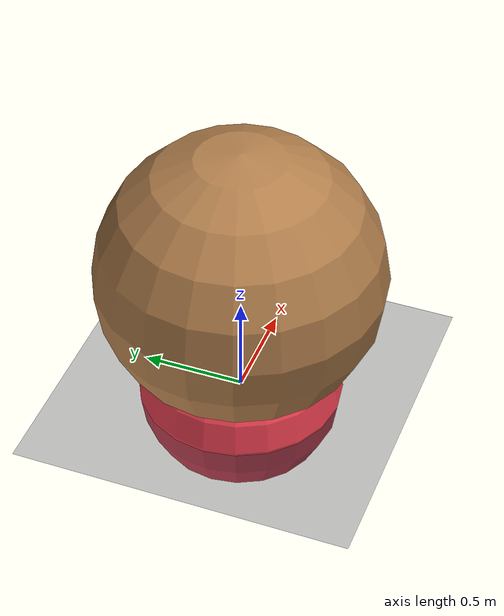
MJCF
<mujoco model="pointmaze_ogbench_teleport">
    <compiler inertiafromgeom="true" angle="degree" coordinate="local"/>

    <option timestep="0.02" iterations="4"/>

    <custom>
        <!-- brax custom params -->
        <numeric data="1000" name="constraint_limit_stiffness"/>
        <numeric data="4000" name="constraint_stiffness"/>
        <numeric data="10" name="constraint_ang_damping"/>
        <numeric data="20" name="constraint_vel_damping"/>
        <numeric data="0.5" name="joint_scale_pos"/>
        <numeric data="0.2" name="joint_scale_ang"/>
        <numeric data="0.0" name="ang_damping"/>
        <numeric data="1" name="spring_mass_scale"/>
        <numeric data="1" name="spring_inertia_scale"/>
        <numeric data="15" name="solver_maxls"/>
    </custom>

    <default>
        <joint limited="false" armature="0" damping="0"/>
        <geom condim="3" conaffinity="0" margin="0" friction="1 0.5 0.5" density="100" material="self"/>
    </default>

    <asset>
        <texture type="skybox" builtin="gradient" width="100" height="100" rgb1="1 1 1" rgb2="0 0 0"/>
        <texture name="grid" type="2d" builtin="checker" rgb1=".08 .11 .16" rgb2=".15 .18 .25" width="300" height="300"/>
        <texture name="texgeom" type="cube" builtin="flat" mark="cross" width="127" height="1278" rgb1="0.8 0.6 0.4" rgb2="0.8 0.6 0.4" markrgb="1 1 1" random="0.01"/>
        <texture name="teleport_in" type="2d" builtin="gradient" rgb1=".1 .1 .1" rgb2="0.35 0.55 0.91" width="300" height="300"/>
        <texture name="teleport_out" type="2d" builtin="gradient" rgb1=".9 .9 .9" rgb2="0.35 0.55 0.91" width="300" height="300"/>
        <material name="grid" texture="grid" texrepeat="1 1" texuniform="true"/>
        <material name="self" rgba=".7 .5 .3 1"/>
        <material name="geom" texture="texgeom" texuniform="true"/>
        <material name="wall" rgba="1 1 1 1"/>
        <material name="target" rgba="0.96 0.26 0.33 1"/>
        <material name="teleport_in" texture="teleport_in"/>
        <material name="teleport_out" texture="teleport_out"/>
    </asset>

    <worldbody>
        <light name="global" directional="true" cutoff="100" exponent="1" ambient=".2 .2 .2" diffuse="1 1 1" specular=".1 .1 .1" pos="0 0 1.3" dir="-0 0 -1.3"/>
        <geom name="floor" pos="0 0 0" size="100 100 .2" type="plane" conaffinity="1" condim="3" material="grid"/>
        <body name="torso" pos="0 0 0">
            <geom name="pointbody" type="sphere" size="0.7" pos="0 0 0.7" contype="1" conaffinity="1"/>
            <joint name="ballx" type="slide" axis="1 0 0" pos="0 0 0"/>
            <joint name="bally" type="slide" axis="0 1 0" pos="0 0 0"/>
            <light name="torso_light" pos="0 0 8" mode="trackcom"/>
        </body>

        <!-- Non-physical target marker for GCRL goal specification.
             Two slide joints at the end of q/qd, stripped by _get_obs via q[:-2]. -->
        <body name="target" pos="0 0 0.01">
            <joint armature="0" axis="1 0 0" damping="0" limited="true" name="target_x" pos="0 0 0" range="-100 100" stiffness="0" type="slide"/>
            <joint armature="0" axis="0 1 0" damping="0" limited="true" name="target_y" pos="0 0 0" range="-100 100" stiffness="0" type="slide"/>
            <geom conaffinity="0" contype="0" name="target" pos="0 0 0" size=".5" type="sphere" mass="1.0" material="target"/>
        </body>
    </worldbody>

    <actuator>
        <motor joint="ballx" ctrlrange="-1 1" ctrllimited="true"/>
        <motor joint="bally" ctrlrange="-1 1" ctrllimited="true"/>
    </actuator>
</mujoco>
